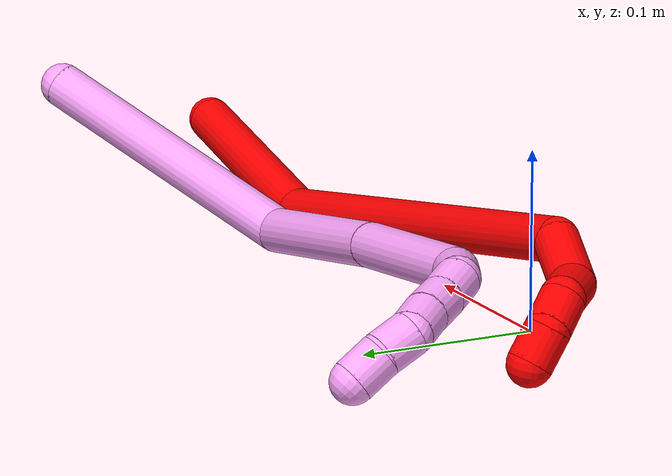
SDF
<sdf version="1.7">
 <world name="default">
  <model name="2">
   <static>0</static>
   <link name="2">
    <collision name="collision-cylinder-e_1_1_4">
     <pose>-0.062065 0.022764 0.002633 -1.45565 -1.2171 1.11118</pose>
     <geometry><cylinder><radius>0.0125</radius><length>0.132322</length></cylinder></geometry>
     <surface>
      <friction><ode><mu>1.16</mu><mu2>1.16</mu2><slip1>0</slip1><slip2>0</slip2></ode></friction>
      <contact><ode><kp>1e+06</kp><kd>1</kd><max_vel>0</max_vel><min_depth>0.001</min_depth></ode></contact>
     </surface>
    </collision>
    <visual name="visual-cylinder-e_1_1_4">
     <pose>-0.062065 0.022764 0.002633 -1.45565 -1.2171 1.11118</pose>
     <geometry><cylinder><radius>0.0125</radius><length>0.132322</length></cylinder></geometry>
     <material><ambient>1 0 0 1</ambient></material>
    </visual>
    <collision name="collision-cylinder-e_2_4_5">
     <pose>-0.234763 0.101294 -0.035635 -2.20363 -1.01212 1.6603</pose>
     <geometry><cylinder><radius>0.0125</radius><length>0.260937</length></cylinder></geometry>
     <surface>
      <friction><ode><mu>1.16</mu><mu2>1.16</mu2><slip1>0</slip1><slip2>0</slip2></ode></friction>
      <contact><ode><kp>1e+06</kp><kd>1</kd><max_vel>0</max_vel><min_depth>0.001</min_depth></ode></contact>
     </surface>
    </collision>
    <visual name="visual-cylinder-e_2_4_5">
     <pose>-0.234763 0.101294 -0.035635 -2.20363 -1.01212 1.6603</pose>
     <geometry><cylinder><radius>0.0125</radius><length>0.260937</length></cylinder></geometry>
     <material><ambient>1 0 0 1</ambient></material>
    </visual>
    <collision name="collision-cylinder-e_3_5_6">
     <pose>-0.363726 0.160421 -0.071336 -0.573985 -1.24499 0.417462</pose>
     <geometry><cylinder><radius>0.0125</radius><length>0.038699</length></cylinder></geometry>
     <surface>
      <friction><ode><mu>1.16</mu><mu2>1.16</mu2><slip1>0</slip1><slip2>0</slip2></ode></friction>
      <contact><ode><kp>1e+06</kp><kd>1</kd><max_vel>0</max_vel><min_depth>0.001</min_depth></ode></contact>
     </surface>
    </collision>
    <visual name="visual-cylinder-e_3_5_6">
     <pose>-0.363726 0.160421 -0.071336 -0.573985 -1.24499 0.417462</pose>
     <geometry><cylinder><radius>0.0125</radius><length>0.038699</length></cylinder></geometry>
     <material><ambient>1 0 0 1</ambient></material>
    </visual>
    <collision name="collision-cylinder-e_4_6_7">
     <pose>-0.395035 0.159419 -0.06669 1.69742 -1.24391 -1.36633</pose>
     <geometry><cylinder><radius>0.0125</radius><length>0.027405</length></cylinder></geometry>
     <surface>
      <friction><ode><mu>1.16</mu><mu2>1.16</mu2><slip1>0</slip1><slip2>0</slip2></ode></friction>
      <contact><ode><kp>1e+06</kp><kd>1</kd><max_vel>0</max_vel><min_depth>0.001</min_depth></ode></contact>
     </surface>
    </collision>
    <visual name="visual-cylinder-e_4_6_7">
     <pose>-0.395035 0.159419 -0.06669 1.69742 -1.24391 -1.36633</pose>
     <geometry><cylinder><radius>0.0125</radius><length>0.027405</length></cylinder></geometry>
     <material><ambient>1 0 0 1</ambient></material>
    </visual>
    <collision name="collision-cylinder-e_5_7_8">
     <pose>-0.415275 0.151611 -0.061243 0.520812 -0.80951 -0.227321</pose>
     <geometry><cylinder><radius>0.0125</radius><length>0.020065</length></cylinder></geometry>
     <surface>
      <friction><ode><mu>1.16</mu><mu2>1.16</mu2><slip1>0</slip1><slip2>0</slip2></ode></friction>
      <contact><ode><kp>1e+06</kp><kd>1</kd><max_vel>0</max_vel><min_depth>0.001</min_depth></ode></contact>
     </surface>
    </collision>
    <visual name="visual-cylinder-e_5_7_8">
     <pose>-0.415275 0.151611 -0.061243 0.520812 -0.80951 -0.227321</pose>
     <geometry><cylinder><radius>0.0125</radius><length>0.020065</length></cylinder></geometry>
     <material><ambient>1 0 0 1</ambient></material>
    </visual>
    <collision name="collision-cylinder-e_6_8_2">
     <pose>-0.426085 0.144567 -0.046281 0.38209 -0.352121 -0.068787</pose>
     <geometry><cylinder><radius>0.0125</radius><length>0.020572</length></cylinder></geometry>
     <surface>
      <friction><ode><mu>1.16</mu><mu2>1.16</mu2><slip1>0</slip1><slip2>0</slip2></ode></friction>
      <contact><ode><kp>1e+06</kp><kd>1</kd><max_vel>0</max_vel><min_depth>0.001</min_depth></ode></contact>
     </surface>
    </collision>
    <visual name="visual-cylinder-e_6_8_2">
     <pose>-0.426085 0.144567 -0.046281 0.38209 -0.352121 -0.068787</pose>
     <geometry><cylinder><radius>0.0125</radius><length>0.020572</length></cylinder></geometry>
     <material><ambient>1 0 0 1</ambient></material>
    </visual>
    <collision name="collision-sphere-2">
     <pose>-0.429633 0.140967 -0.037322 0 -0 0</pose>
     <geometry><sphere><radius>0.0125</radius></sphere></geometry>
     <surface>
      <friction><ode><mu>1.16</mu><mu2>1.16</mu2><slip1>0</slip1><slip2>0</slip2></ode></friction>
      <contact><ode><kp>1e+06</kp><kd>1</kd><max_vel>0</max_vel><min_depth>0.001</min_depth></ode></contact>
     </surface>
    </collision>
    <visual name="visual-sphere-2">
     <pose>-0.429633 0.140967 -0.037322 0 -0 0</pose>
     <geometry><sphere><radius>0.0125</radius></sphere></geometry>
     <material><ambient>1 0 0 1</ambient></material>
    </visual>
    <collision name="collision-sphere-4">
     <pose>-0.124131 0.045529 0.005266 0 -0 0</pose>
     <geometry><sphere><radius>0.0125</radius></sphere></geometry>
     <surface>
      <friction><ode><mu>1.16</mu><mu2>1.16</mu2><slip1>0</slip1><slip2>0</slip2></ode></friction>
      <contact><ode><kp>1e+06</kp><kd>1</kd><max_vel>0</max_vel><min_depth>0.001</min_depth></ode></contact>
     </surface>
    </collision>
    <visual name="visual-sphere-4">
     <pose>-0.124131 0.045529 0.005266 0 -0 0</pose>
     <geometry><sphere><radius>0.0125</radius></sphere></geometry>
     <material><ambient>1 0 0 1</ambient></material>
    </visual>
    <collision name="collision-sphere-1">
     <geometry><sphere><radius>0.0125</radius></sphere></geometry>
     <surface>
      <friction><ode><mu>1.16</mu><mu2>1.16</mu2><slip1>0</slip1><slip2>0</slip2></ode></friction>
      <contact><ode><kp>1e+06</kp><kd>1</kd><max_vel>0</max_vel><min_depth>0.001</min_depth></ode></contact>
     </surface>
    </collision>
    <visual name="visual-sphere-1">
     <geometry><sphere><radius>0.0125</radius></sphere></geometry>
     <material><ambient>1 0 0 1</ambient></material>
    </visual>
    <collision name="collision-sphere-8">
     <pose>-0.422538 0.148167 -0.055239 0 -0 0</pose>
     <geometry><sphere><radius>0.0125</radius></sphere></geometry>
     <surface>
      <friction><ode><mu>1.16</mu><mu2>1.16</mu2><slip1>0</slip1><slip2>0</slip2></ode></friction>
      <contact><ode><kp>1e+06</kp><kd>1</kd><max_vel>0</max_vel><min_depth>0.001</min_depth></ode></contact>
     </surface>
    </collision>
    <visual name="visual-sphere-8">
     <pose>-0.422538 0.148167 -0.055239 0 -0 0</pose>
     <geometry><sphere><radius>0.0125</radius></sphere></geometry>
     <material><ambient>1 0 0 1</ambient></material>
    </visual>
    <collision name="collision-sphere-5">
     <pose>-0.345394 0.157058 -0.076536 0 -0 0</pose>
     <geometry><sphere><radius>0.0125</radius></sphere></geometry>
     <surface>
      <friction><ode><mu>1.16</mu><mu2>1.16</mu2><slip1>0</slip1><slip2>0</slip2></ode></friction>
      <contact><ode><kp>1e+06</kp><kd>1</kd><max_vel>0</max_vel><min_depth>0.001</min_depth></ode></contact>
     </surface>
    </collision>
    <visual name="visual-sphere-5">
     <pose>-0.345394 0.157058 -0.076536 0 -0 0</pose>
     <geometry><sphere><radius>0.0125</radius></sphere></geometry>
     <material><ambient>1 0 0 1</ambient></material>
    </visual>
    <collision name="collision-sphere-6">
     <pose>-0.382058 0.163784 -0.066135 0 -0 0</pose>
     <geometry><sphere><radius>0.0125</radius></sphere></geometry>
     <surface>
      <friction><ode><mu>1.16</mu><mu2>1.16</mu2><slip1>0</slip1><slip2>0</slip2></ode></friction>
      <contact><ode><kp>1e+06</kp><kd>1</kd><max_vel>0</max_vel><min_depth>0.001</min_depth></ode></contact>
     </surface>
    </collision>
    <visual name="visual-sphere-6">
     <pose>-0.382058 0.163784 -0.066135 0 -0 0</pose>
     <geometry><sphere><radius>0.0125</radius></sphere></geometry>
     <material><ambient>1 0 0 1</ambient></material>
    </visual>
    <collision name="collision-sphere-7">
     <pose>-0.408012 0.155055 -0.067246 0 -0 0</pose>
     <geometry><sphere><radius>0.0125</radius></sphere></geometry>
     <surface>
      <friction><ode><mu>1.16</mu><mu2>1.16</mu2><slip1>0</slip1><slip2>0</slip2></ode></friction>
      <contact><ode><kp>1e+06</kp><kd>1</kd><max_vel>0</max_vel><min_depth>0.001</min_depth></ode></contact>
     </surface>
    </collision>
    <visual name="visual-sphere-7">
     <pose>-0.408012 0.155055 -0.067246 0 -0 0</pose>
     <geometry><sphere><radius>0.0125</radius></sphere></geometry>
     <material><ambient>1 0 0 1</ambient></material>
    </visual>
    <inertial>
     <pose>-0.222941 0.092073 -0.031439 0 -0 0</pose>
     <mass>0.5</mass>
     <inertia>
      <ixx>0.000779</ixx>
      <ixy>0</ixy>
      <ixz>0</ixz>
      <iyy>0.00214</iyy>
      <iyz>0</iyz>
      <izz>0.000753</izz>
     </inertia>
    </inertial>
   </link>
   <pose>0.364561 0.017403 0.036084 -2.98313 -0.089608 -0.393235</pose>
  </model>
  <model name="4">
   <static>0</static>
   <link name="4">
    <collision name="collision-cylinder-e_1_1_4">
     <pose>0.003471 0.081088 -0.011722 -1.71436 0.042338 -0.048895</pose>
     <geometry><cylinder><radius>0.0125</radius><length>0.164009</length></cylinder></geometry>
     <surface>
      <friction><ode><mu>1.16</mu><mu2>1.16</mu2><slip1>0</slip1><slip2>0</slip2></ode></friction>
      <contact><ode><kp>1e+06</kp><kd>1</kd><max_vel>0</max_vel><min_depth>0.001</min_depth></ode></contact>
     </surface>
    </collision>
    <visual name="visual-cylinder-e_1_1_4">
     <pose>0.003471 0.081088 -0.011722 -1.71436 0.042338 -0.048895</pose>
     <geometry><cylinder><radius>0.0125</radius><length>0.164009</length></cylinder></geometry>
     <material><ambient>1 0.65098 0.996078 1</ambient></material>
    </visual>
    <collision name="collision-cylinder-e_2_4_5">
     <pose>-0.030051 0.205682 -0.040093 -1.93631 -0.671147 0.938318</pose>
     <geometry><cylinder><radius>0.0125</radius><length>0.118969</length></cylinder></geometry>
     <surface>
      <friction><ode><mu>1.16</mu><mu2>1.16</mu2><slip1>0</slip1><slip2>0</slip2></ode></friction>
      <contact><ode><kp>1e+06</kp><kd>1</kd><max_vel>0</max_vel><min_depth>0.001</min_depth></ode></contact>
     </surface>
    </collision>
    <visual name="visual-cylinder-e_2_4_5">
     <pose>-0.030051 0.205682 -0.040093 -1.93631 -0.671147 0.938318</pose>
     <geometry><cylinder><radius>0.0125</radius><length>0.118969</length></cylinder></geometry>
     <material><ambient>1 0.65098 0.996078 1</ambient></material>
    </visual>
    <collision name="collision-cylinder-e_3_5_6">
     <pose>-0.095379 0.286688 -0.068367 -1.87138 -0.625174 0.826551</pose>
     <geometry><cylinder><radius>0.0125</radius><length>0.096835</length></cylinder></geometry>
     <surface>
      <friction><ode><mu>1.16</mu><mu2>1.16</mu2><slip1>0</slip1><slip2>0</slip2></ode></friction>
      <contact><ode><kp>1e+06</kp><kd>1</kd><max_vel>0</max_vel><min_depth>0.001</min_depth></ode></contact>
     </surface>
    </collision>
    <visual name="visual-cylinder-e_3_5_6">
     <pose>-0.095379 0.286688 -0.068367 -1.87138 -0.625174 0.826551</pose>
     <geometry><cylinder><radius>0.0125</radius><length>0.096835</length></cylinder></geometry>
     <material><ambient>1 0.65098 0.996078 1</ambient></material>
    </visual>
    <collision name="collision-cylinder-e_4_6_7">
     <pose>-0.13172 0.33013 -0.07903 -1.41043 -0.926036 0.803662</pose>
     <geometry><cylinder><radius>0.0125</radius><length>0.020032</length></cylinder></geometry>
     <surface>
      <friction><ode><mu>1.16</mu><mu2>1.16</mu2><slip1>0</slip1><slip2>0</slip2></ode></friction>
      <contact><ode><kp>1e+06</kp><kd>1</kd><max_vel>0</max_vel><min_depth>0.001</min_depth></ode></contact>
     </surface>
    </collision>
    <visual name="visual-cylinder-e_4_6_7">
     <pose>-0.13172 0.33013 -0.07903 -1.41043 -0.926036 0.803662</pose>
     <geometry><cylinder><radius>0.0125</radius><length>0.020032</length></cylinder></geometry>
     <material><ambient>1 0.65098 0.996078 1</ambient></material>
    </visual>
    <collision name="collision-cylinder-e_5_7_8">
     <pose>-0.146834 0.339707 -0.07204 -0.542504 -0.79025 0.230941</pose>
     <geometry><cylinder><radius>0.0125</radius><length>0.020009</length></cylinder></geometry>
     <surface>
      <friction><ode><mu>1.16</mu><mu2>1.16</mu2><slip1>0</slip1><slip2>0</slip2></ode></friction>
      <contact><ode><kp>1e+06</kp><kd>1</kd><max_vel>0</max_vel><min_depth>0.001</min_depth></ode></contact>
     </surface>
    </collision>
    <visual name="visual-cylinder-e_5_7_8">
     <pose>-0.146834 0.339707 -0.07204 -0.542504 -0.79025 0.230941</pose>
     <geometry><cylinder><radius>0.0125</radius><length>0.020009</length></cylinder></geometry>
     <material><ambient>1 0.65098 0.996078 1</ambient></material>
    </visual>
    <collision name="collision-cylinder-e_6_8_9">
     <pose>-0.16154 0.346652 -0.060375 -0.531091 -0.860341 0.24829</pose>
     <geometry><cylinder><radius>0.0125</radius><length>0.020045</length></cylinder></geometry>
     <surface>
      <friction><ode><mu>1.16</mu><mu2>1.16</mu2><slip1>0</slip1><slip2>0</slip2></ode></friction>
      <contact><ode><kp>1e+06</kp><kd>1</kd><max_vel>0</max_vel><min_depth>0.001</min_depth></ode></contact>
     </surface>
    </collision>
    <visual name="visual-cylinder-e_6_8_9">
     <pose>-0.16154 0.346652 -0.060375 -0.531091 -0.860341 0.24829</pose>
     <geometry><cylinder><radius>0.0125</radius><length>0.020045</length></cylinder></geometry>
     <material><ambient>1 0.65098 0.996078 1</ambient></material>
    </visual>
    <collision name="collision-cylinder-e_7_9_10">
     <pose>-0.176445 0.353918 -0.04909 -0.61076 -0.814364 0.27026</pose>
     <geometry><cylinder><radius>0.0125</radius><length>0.020095</length></cylinder></geometry>
     <surface>
      <friction><ode><mu>1.16</mu><mu2>1.16</mu2><slip1>0</slip1><slip2>0</slip2></ode></friction>
      <contact><ode><kp>1e+06</kp><kd>1</kd><max_vel>0</max_vel><min_depth>0.001</min_depth></ode></contact>
     </surface>
    </collision>
    <visual name="visual-cylinder-e_7_9_10">
     <pose>-0.176445 0.353918 -0.04909 -0.61076 -0.814364 0.27026</pose>
     <geometry><cylinder><radius>0.0125</radius><length>0.020095</length></cylinder></geometry>
     <material><ambient>1 0.65098 0.996078 1</ambient></material>
    </visual>
    <collision name="collision-cylinder-e_8_10_11">
     <pose>-0.188052 0.357802 -0.034411 0.007837 -0.44434 -0.00177</pose>
     <geometry><cylinder><radius>0.0125</radius><length>0.020002</length></cylinder></geometry>
     <surface>
      <friction><ode><mu>1.16</mu><mu2>1.16</mu2><slip1>0</slip1><slip2>0</slip2></ode></friction>
      <contact><ode><kp>1e+06</kp><kd>1</kd><max_vel>0</max_vel><min_depth>0.001</min_depth></ode></contact>
     </surface>
    </collision>
    <visual name="visual-cylinder-e_8_10_11">
     <pose>-0.188052 0.357802 -0.034411 0.007837 -0.44434 -0.00177</pose>
     <geometry><cylinder><radius>0.0125</radius><length>0.020002</length></cylinder></geometry>
     <material><ambient>1 0.65098 0.996078 1</ambient></material>
    </visual>
    <collision name="collision-cylinder-e_9_11_2">
     <pose>-0.194703 0.357914 -0.015662 -0.018808 -0.237395 0.002243</pose>
     <geometry><cylinder><radius>0.0125</radius><length>0.020003</length></cylinder></geometry>
     <surface>
      <friction><ode><mu>1.16</mu><mu2>1.16</mu2><slip1>0</slip1><slip2>0</slip2></ode></friction>
      <contact><ode><kp>1e+06</kp><kd>1</kd><max_vel>0</max_vel><min_depth>0.001</min_depth></ode></contact>
     </surface>
    </collision>
    <visual name="visual-cylinder-e_9_11_2">
     <pose>-0.194703 0.357914 -0.015662 -0.018808 -0.237395 0.002243</pose>
     <geometry><cylinder><radius>0.0125</radius><length>0.020003</length></cylinder></geometry>
     <material><ambient>1 0.65098 0.996078 1</ambient></material>
    </visual>
    <collision name="collision-sphere-2">
     <pose>-0.197055 0.358096 -0.005943 0 -0 0</pose>
     <geometry><sphere><radius>0.0125</radius></sphere></geometry>
     <surface>
      <friction><ode><mu>1.16</mu><mu2>1.16</mu2><slip1>0</slip1><slip2>0</slip2></ode></friction>
      <contact><ode><kp>1e+06</kp><kd>1</kd><max_vel>0</max_vel><min_depth>0.001</min_depth></ode></contact>
     </surface>
    </collision>
    <visual name="visual-sphere-2">
     <pose>-0.197055 0.358096 -0.005943 0 -0 0</pose>
     <geometry><sphere><radius>0.0125</radius></sphere></geometry>
     <material><ambient>1 0.65098 0.996078 1</ambient></material>
    </visual>
    <collision name="collision-sphere-11">
     <pose>-0.192351 0.357731 -0.025381 0 -0 0</pose>
     <geometry><sphere><radius>0.0125</radius></sphere></geometry>
     <surface>
      <friction><ode><mu>1.16</mu><mu2>1.16</mu2><slip1>0</slip1><slip2>0</slip2></ode></friction>
      <contact><ode><kp>1e+06</kp><kd>1</kd><max_vel>0</max_vel><min_depth>0.001</min_depth></ode></contact>
     </surface>
    </collision>
    <visual name="visual-sphere-11">
     <pose>-0.192351 0.357731 -0.025381 0 -0 0</pose>
     <geometry><sphere><radius>0.0125</radius></sphere></geometry>
     <material><ambient>1 0.65098 0.996078 1</ambient></material>
    </visual>
    <collision name="collision-sphere-10">
     <pose>-0.183753 0.357872 -0.04344 0 -0 0</pose>
     <geometry><sphere><radius>0.0125</radius></sphere></geometry>
     <surface>
      <friction><ode><mu>1.16</mu><mu2>1.16</mu2><slip1>0</slip1><slip2>0</slip2></ode></friction>
      <contact><ode><kp>1e+06</kp><kd>1</kd><max_vel>0</max_vel><min_depth>0.001</min_depth></ode></contact>
     </surface>
    </collision>
    <visual name="visual-sphere-10">
     <pose>-0.183753 0.357872 -0.04344 0 -0 0</pose>
     <geometry><sphere><radius>0.0125</radius></sphere></geometry>
     <material><ambient>1 0.65098 0.996078 1</ambient></material>
    </visual>
    <collision name="collision-sphere-9">
     <pose>-0.169138 0.349963 -0.054739 0 -0 0</pose>
     <geometry><sphere><radius>0.0125</radius></sphere></geometry>
     <surface>
      <friction><ode><mu>1.16</mu><mu2>1.16</mu2><slip1>0</slip1><slip2>0</slip2></ode></friction>
      <contact><ode><kp>1e+06</kp><kd>1</kd><max_vel>0</max_vel><min_depth>0.001</min_depth></ode></contact>
     </surface>
    </collision>
    <visual name="visual-sphere-9">
     <pose>-0.169138 0.349963 -0.054739 0 -0 0</pose>
     <geometry><sphere><radius>0.0125</radius></sphere></geometry>
     <material><ambient>1 0.65098 0.996078 1</ambient></material>
    </visual>
    <collision name="collision-sphere-4">
     <pose>0.006942 0.162177 -0.023443 0 -0 0</pose>
     <geometry><sphere><radius>0.0125</radius></sphere></geometry>
     <surface>
      <friction><ode><mu>1.16</mu><mu2>1.16</mu2><slip1>0</slip1><slip2>0</slip2></ode></friction>
      <contact><ode><kp>1e+06</kp><kd>1</kd><max_vel>0</max_vel><min_depth>0.001</min_depth></ode></contact>
     </surface>
    </collision>
    <visual name="visual-sphere-4">
     <pose>0.006942 0.162177 -0.023443 0 -0 0</pose>
     <geometry><sphere><radius>0.0125</radius></sphere></geometry>
     <material><ambient>1 0.65098 0.996078 1</ambient></material>
    </visual>
    <collision name="collision-sphere-1">
     <geometry><sphere><radius>0.0125</radius></sphere></geometry>
     <surface>
      <friction><ode><mu>1.16</mu><mu2>1.16</mu2><slip1>0</slip1><slip2>0</slip2></ode></friction>
      <contact><ode><kp>1e+06</kp><kd>1</kd><max_vel>0</max_vel><min_depth>0.001</min_depth></ode></contact>
     </surface>
    </collision>
    <visual name="visual-sphere-1">
     <geometry><sphere><radius>0.0125</radius></sphere></geometry>
     <material><ambient>1 0.65098 0.996078 1</ambient></material>
    </visual>
    <collision name="collision-sphere-8">
     <pose>-0.153943 0.343342 -0.066011 0 -0 0</pose>
     <geometry><sphere><radius>0.0125</radius></sphere></geometry>
     <surface>
      <friction><ode><mu>1.16</mu><mu2>1.16</mu2><slip1>0</slip1><slip2>0</slip2></ode></friction>
      <contact><ode><kp>1e+06</kp><kd>1</kd><max_vel>0</max_vel><min_depth>0.001</min_depth></ode></contact>
     </surface>
    </collision>
    <visual name="visual-sphere-8">
     <pose>-0.153943 0.343342 -0.066011 0 -0 0</pose>
     <geometry><sphere><radius>0.0125</radius></sphere></geometry>
     <material><ambient>1 0.65098 0.996078 1</ambient></material>
    </visual>
    <collision name="collision-sphere-5">
     <pose>-0.067043 0.249188 -0.056744 0 -0 0</pose>
     <geometry><sphere><radius>0.0125</radius></sphere></geometry>
     <surface>
      <friction><ode><mu>1.16</mu><mu2>1.16</mu2><slip1>0</slip1><slip2>0</slip2></ode></friction>
      <contact><ode><kp>1e+06</kp><kd>1</kd><max_vel>0</max_vel><min_depth>0.001</min_depth></ode></contact>
     </surface>
    </collision>
    <visual name="visual-sphere-5">
     <pose>-0.067043 0.249188 -0.056744 0 -0 0</pose>
     <geometry><sphere><radius>0.0125</radius></sphere></geometry>
     <material><ambient>1 0.65098 0.996078 1</ambient></material>
    </visual>
    <collision name="collision-sphere-6">
     <pose>-0.123715 0.324188 -0.079991 0 -0 0</pose>
     <geometry><sphere><radius>0.0125</radius></sphere></geometry>
     <surface>
      <friction><ode><mu>1.16</mu><mu2>1.16</mu2><slip1>0</slip1><slip2>0</slip2></ode></friction>
      <contact><ode><kp>1e+06</kp><kd>1</kd><max_vel>0</max_vel><min_depth>0.001</min_depth></ode></contact>
     </surface>
    </collision>
    <visual name="visual-sphere-6">
     <pose>-0.123715 0.324188 -0.079991 0 -0 0</pose>
     <geometry><sphere><radius>0.0125</radius></sphere></geometry>
     <material><ambient>1 0.65098 0.996078 1</ambient></material>
    </visual>
    <collision name="collision-sphere-7">
     <pose>-0.139726 0.336073 -0.078069 0 -0 0</pose>
     <geometry><sphere><radius>0.0125</radius></sphere></geometry>
     <surface>
      <friction><ode><mu>1.16</mu><mu2>1.16</mu2><slip1>0</slip1><slip2>0</slip2></ode></friction>
      <contact><ode><kp>1e+06</kp><kd>1</kd><max_vel>0</max_vel><min_depth>0.001</min_depth></ode></contact>
     </surface>
    </collision>
    <visual name="visual-sphere-7">
     <pose>-0.139726 0.336073 -0.078069 0 -0 0</pose>
     <geometry><sphere><radius>0.0125</radius></sphere></geometry>
     <material><ambient>1 0.65098 0.996078 1</ambient></material>
    </visual>
    <inertial>
     <pose>-0.064517 0.214635 -0.039071 0 -0 0</pose>
     <mass>0.5</mass>
     <inertia>
      <ixx>0.000597</ixx>
      <ixy>0</ixy>
      <ixz>0</ixz>
      <iyy>0.000159</iyy>
      <iyz>0</iyz>
      <izz>-0.000414</izz>
     </inertia>
    </inertial>
   </link>
   <pose>0.325366 0.129037 0.077388 -2.57503 0.522352 -0.897103</pose>
  </model>
 </world>
</sdf>
